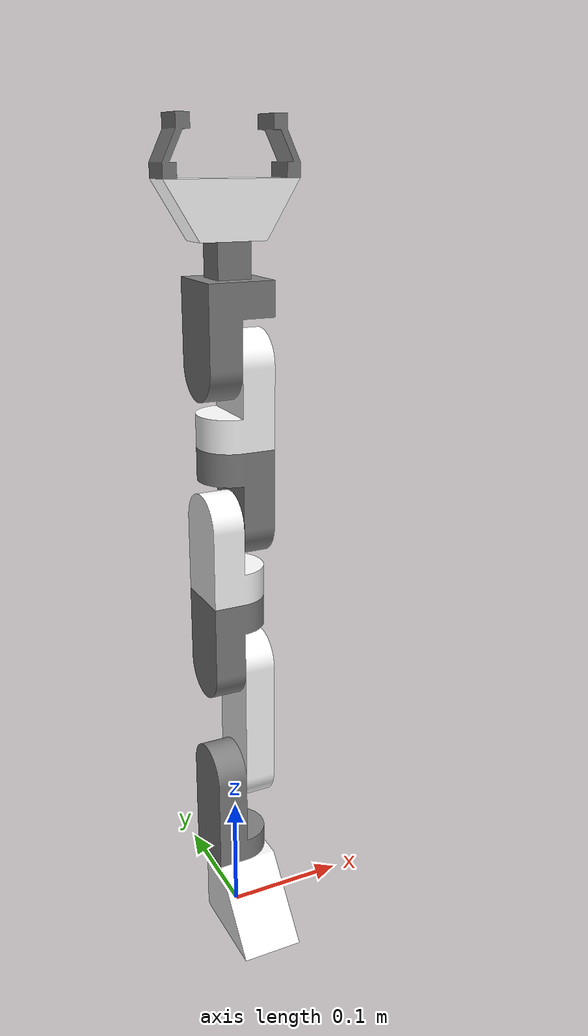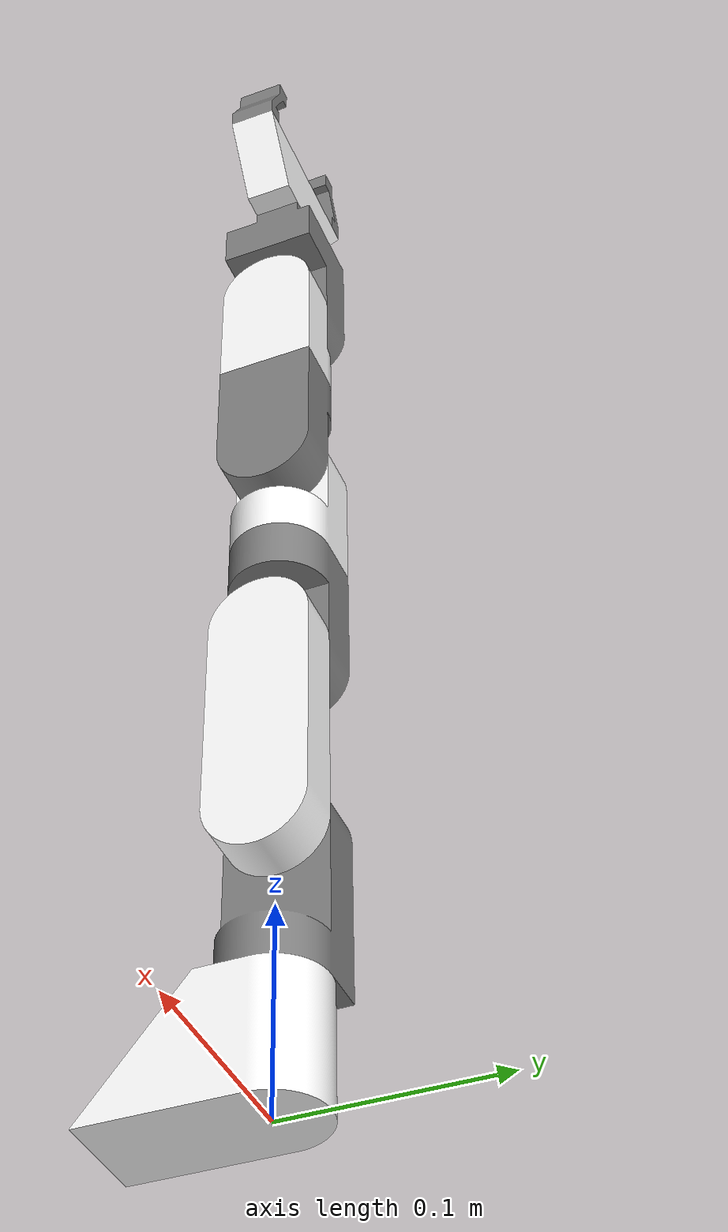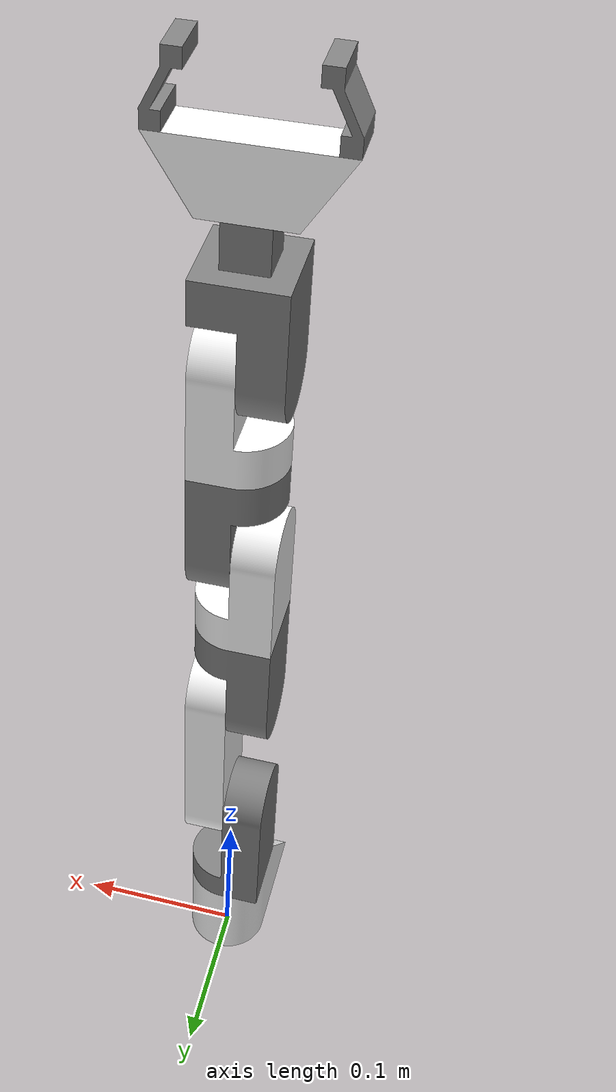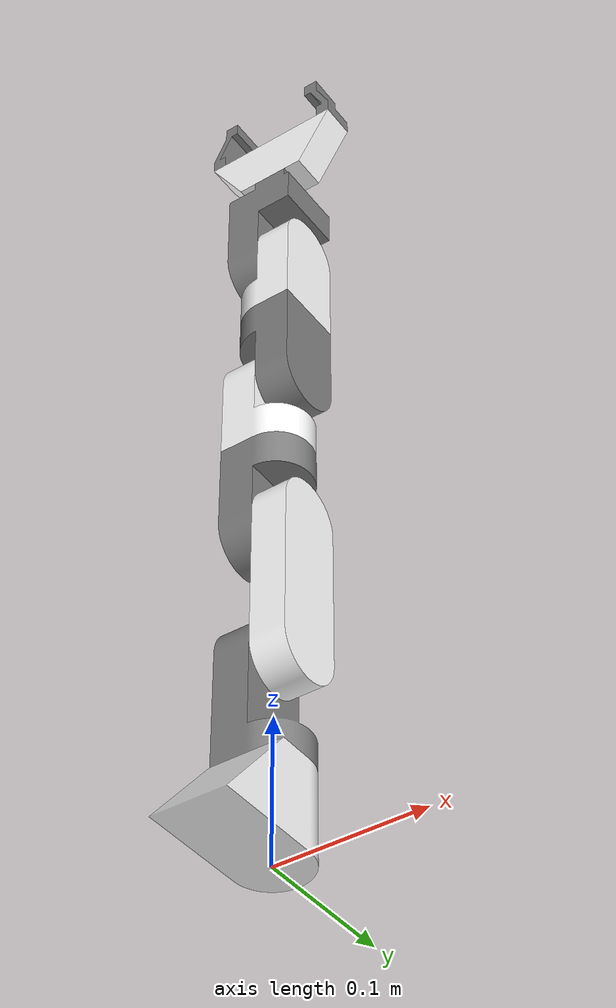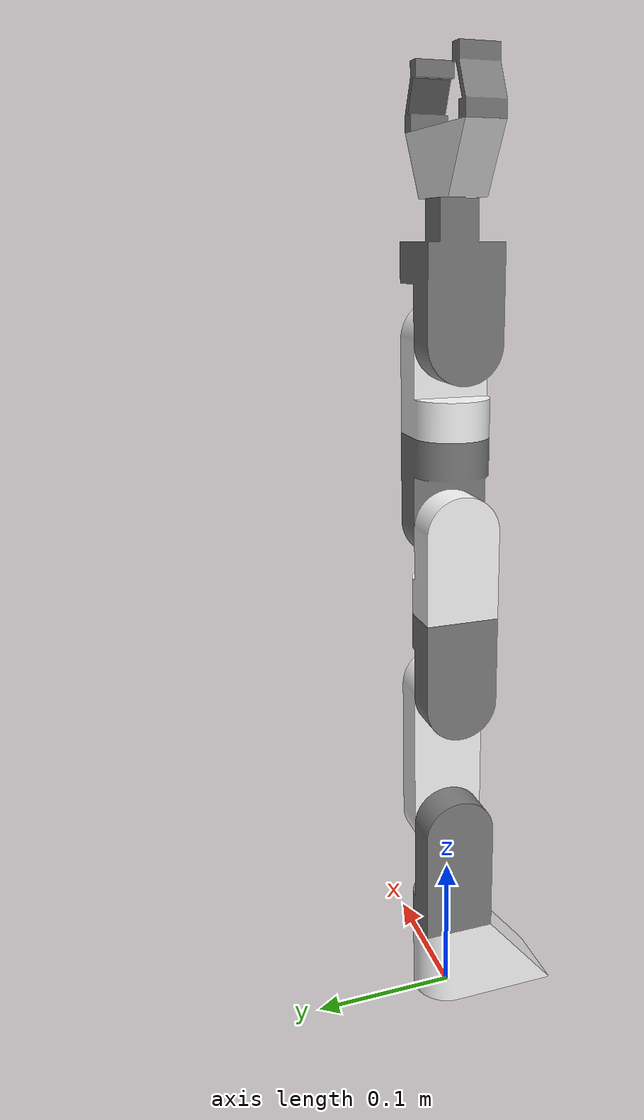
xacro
<?xml version="1.0"?>
<robot name="penguin" xmlns:xacro="http://www.ros.org/wiki/xacro" >

  <material name="Black">
    <color rgba="0.5 0.5 0.5 1"/>
  </material>

  <material name="White">
    <color rgba="1 1 1 1"/>
  </material>

  <xacro:property name="base_link_mesh" value="package://robot_description_pkg/meshes/base_link.stl"/>
  <xacro:property name="link_1_mesh" value="package://robot_description_pkg/meshes/link_1.stl"/>
  <xacro:property name="link_2_mesh" value="package://robot_description_pkg/meshes/link_2.stl"/>
  <xacro:property name="link_3_mesh" value="package://robot_description_pkg/meshes/link_3.stl"/>
  <xacro:property name="link_4_mesh" value="package://robot_description_pkg/meshes/link_4.stl"/>
  <xacro:property name="link_5_mesh" value="package://robot_description_pkg/meshes/link_3.stl"/>
  <xacro:property name="link_6_mesh" value="package://robot_description_pkg/meshes/link_4.stl"/>
  <xacro:property name="link_7_mesh" value="package://robot_description_pkg/meshes/link_5.stl"/>
  <xacro:property name="hand_mesh" value="package://robot_description_pkg/meshes/hand.stl"/>
  <xacro:property name="finger_mesh" value="package://robot_description_pkg/meshes/finger.stl"/>

  <xacro:macro name="make_link" params="name mesh xyz rpy color mass ixx ixy ixz iyy iyz izz">
    <link name="${name}">
      <visual>
        <geometry>
          <mesh filename="${mesh}" scale="0.001 0.001 0.001"/>
        </geometry>
        <origin xyz="${xyz}" rpy="${rpy}"/>
        <material name="${color}"/>
      </visual>
      <collision>
        <geometry>
          <mesh filename="${mesh}" scale="0.0011 0.0011 0.0011"/>
        </geometry>
        <origin xyz="${xyz}" rpy="${rpy}"/>
      </collision>
      <inertial>
        <mass value="${mass}"/>
        <inertia ixx="${ixx}" ixy="${ixy}" ixz="${ixz}" iyy="${iyy}" iyz="${iyz}" izz="${izz}"/>
      </inertial>
    </link>
  </xacro:macro>

  <xacro:macro name="join_links" params="name parent child xyz axis lower upper">
    <joint name="${name}" type="revolute">
      <parent link="${parent}"/>
      <child link="${child}"/>
      <origin xyz="${xyz}"/>
      <axis xyz="${axis}"/>
      <limit effort="300" velocity="0.1" lower="${lower}" upper="${upper}"/>
    </joint>
  </xacro:macro>

  <xacro:macro name="fix_links" params="name parent child xyz">
    <joint name="${name}" type="fixed">
      <parent link="${parent}"/>
      <child link="${child}"/>
      <origin xyz="${xyz}"/>
    </joint>
  </xacro:macro>

  <link name="base_link">
    <visual>
      <geometry>
        <mesh filename="${base_link_mesh}" scale="0.001 0.001 0.001"/>
      </geometry>
      <origin xyz="0 0 0" rpy="0 0 0"/>
      <material name="White"/>
    </visual>
    <collision>
      <geometry>
        <mesh filename="${base_link_mesh}" scale="0.0011 0.0011 0.0011"/>
      </geometry>
      <origin xyz="0 0 0" rpy="0 0 0"/>
    </collision>
  </link>

  <xacro:join_links name="base_link_link_1"
    parent="base_link"
    child="link_1"
    xyz="0 0 0.06"
    axis="0 0 1"
    lower="-3.14"
    upper="3.14"/>

  <xacro:make_link name="link_1"
    mesh="${link_1_mesh}"
    xyz="0 0 0"
    rpy="0 0 0"
    color="Black"
    mass="0.075"
    ixx="160347952.000000" ixy="0.073988" ixz="15663199.000000"
    iyy="149014144.000000" iyz="0.506316"
    izz="44131488.000000"/>

  <xacro:join_links name="link_1_link_2"
    parent="link_1"
    child="link_2"
    xyz="0 0 0.08"
    axis="1 0 0"
    lower="-2.3"
    upper="2.3"/>

  <xacro:make_link name="link_2"
    mesh="${link_2_mesh}"
    xyz="0 0 0"
    rpy="0 0 0"
    color="White"
    mass="0.075"
    ixx="320315008.000000" ixy="0.025285" ixz="1.992257"
    iyy="295672384.000000" iyz="0.107130"
    izz="42775932.000000"/>

  <xacro:join_links name="link_2_link_3"
    parent="link_2"
    child="link_3"
    xyz="0 0 0.1"
    axis="1 0 0"
    lower="-1.8"
    upper="1.8"/>

  <xacro:make_link name="link_3"
    mesh="${link_3_mesh}"
    xyz="0 0 0"
    rpy="0 0 0"
    color="Black"
    mass="0.075"
    ixx="93527256.000000" ixy="0.003871" ixz="12514371.000000"
    iyy="87003976.000000" iyz="0.035148"
    izz="40058448.000000"/>

  <xacro:join_links name="link_3_link_4"
    parent="link_3"
    child="link_4"
    xyz="0 0 0.06"
    axis="0 0 1"
    lower="-3.14"
    upper="3.14"/>

  <xacro:make_link name="link_4"
    mesh="${link_4_mesh}"
    xyz="0 0 0"
    rpy="0 0 0"
    color="White"
    mass="0.075"
    ixx="93527256.000000" ixy="0.003871" ixz="12514371.000000"
    iyy="87003976.000000" iyz="0.035148"
    izz="40058448.000000"/>

  <xacro:join_links name="link_4_link_5"
    parent="link_4"
    child="link_5"
    xyz="0 0 0.06"
    axis="1 0 0"
    lower="-1.8"
    upper="1.8"/>

  <xacro:make_link name="link_5"
    mesh="${link_5_mesh}"
    xyz="0 0 0"
    rpy="0 0 3.14"
    color="Black"
    mass="0.075"
    ixx="93527256.000000" ixy="0.003871" ixz="12514371.000000"
    iyy="87003976.000000" iyz="0.035148"
    izz="40058448.000000"/>

  <xacro:join_links name="link_5_link_6"
    parent="link_5"
    child="link_6"
    xyz="0 0 0.06"
    axis="0 0 1"
    lower="-3.14"
    upper="3.14"/>

  <xacro:make_link name="link_6"
    mesh="${link_6_mesh}"
    xyz="0 0 0"
    rpy="0 0 3.14"
    color="White"
    mass="0.075"
    ixx="93527256.000000" ixy="0.003871" ixz="12514371.000000"
    iyy="87003976.000000" iyz="0.035148"
    izz="40058448.000000"/>

  <xacro:join_links name="link_6_link_7"
    parent="link_6"
    child="link_7"
    xyz="0 0 0.06"
    axis="1 0 0"
    lower="-1.8"
    upper="1.8"/>

  <xacro:make_link name="link_7"
    mesh="${link_7_mesh}"
    xyz="0 0 0"
    rpy="0 0 0"
    color="Black"
    mass="0.075"
    ixx="130744760.000000" ixy="0.001162" ixz="20542782.000000"
    iyy="127046656.000000" iyz="0.004876"
    izz="49867952.000000"/>

  <xacro:fix_links name="link_7_hand"
    parent="link_7"
    child="hand"
    xyz="0 0 0.085"/>

  <xacro:make_link name="hand"
    mesh="${hand_mesh}"
    xyz="0 0 0"
    rpy="0 0 0"
    color="White"
    mass="0.075"
    ixx="13535881.000000" ixy="0.005851" ixz="0.209502"
    iyy="48692132.000000" iyz="0.001552"
    izz="42968752.000000"/>

  <joint name="hand_finger_1" type="prismatic">
    <parent link="hand"/>
    <child link="finger_1"/>
    <origin xyz="0.03 0 0.04"/>
    <limit effort="100" velocity="1.0" lower="-0.03" upper="0"/>
    <mimic joint="hand_finger_2" multiplier="-1"/>
  </joint>

  <xacro:make_link name="finger_1"
    mesh="${finger_mesh}"
    xyz="0 0 0"
    rpy="0 0 0"
    color="Black"
    mass="0.01"
    ixx="1640625.000000" ixy="0.000262" ixz="416666.656250"
    iyy="1453125.500000" iyz="0.000365"
    izz="593749.937500"/>

  <joint name="hand_finger_2" type="prismatic">
    <parent link="hand"/>
    <child link="finger_2"/>
    <origin xyz="-0.03 0 0.04"/>
    <limit effort="100" velocity="1.0" lower="0" upper="0.03"/>
  </joint>

  <xacro:make_link name="finger_2"
    mesh="${finger_mesh}"
    xyz="0 0 0"
    rpy="0 0 3.14"
    color="Black"
    mass="0.01"
    ixx="1640625.000000" ixy="0.000262" ixz="416666.656250"
    iyy="1453125.500000" iyz="0.000365"
    izz="593749.937500"/>

</robot>
